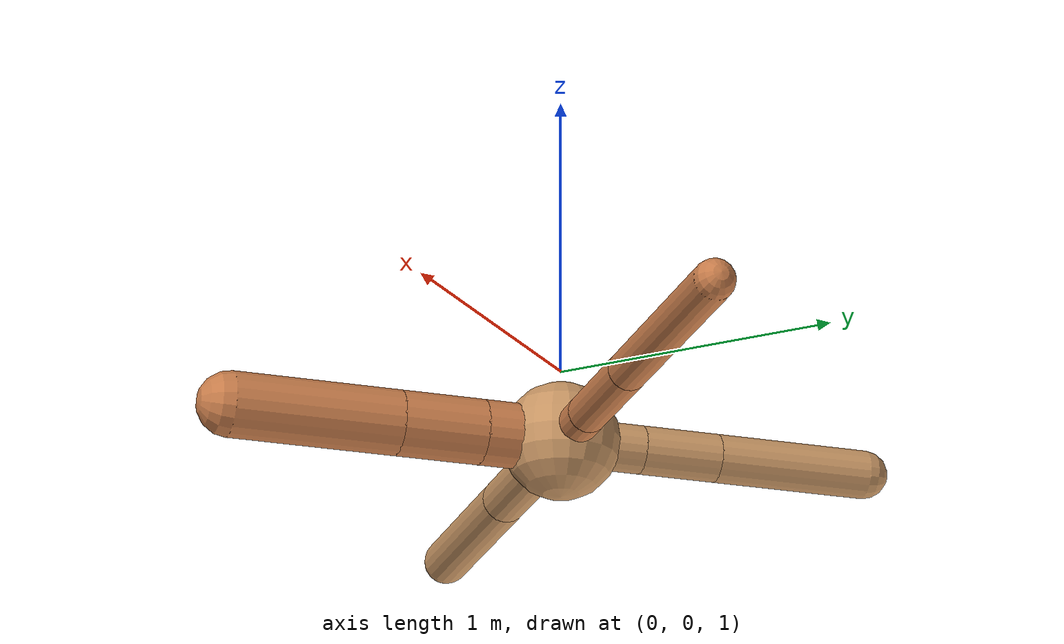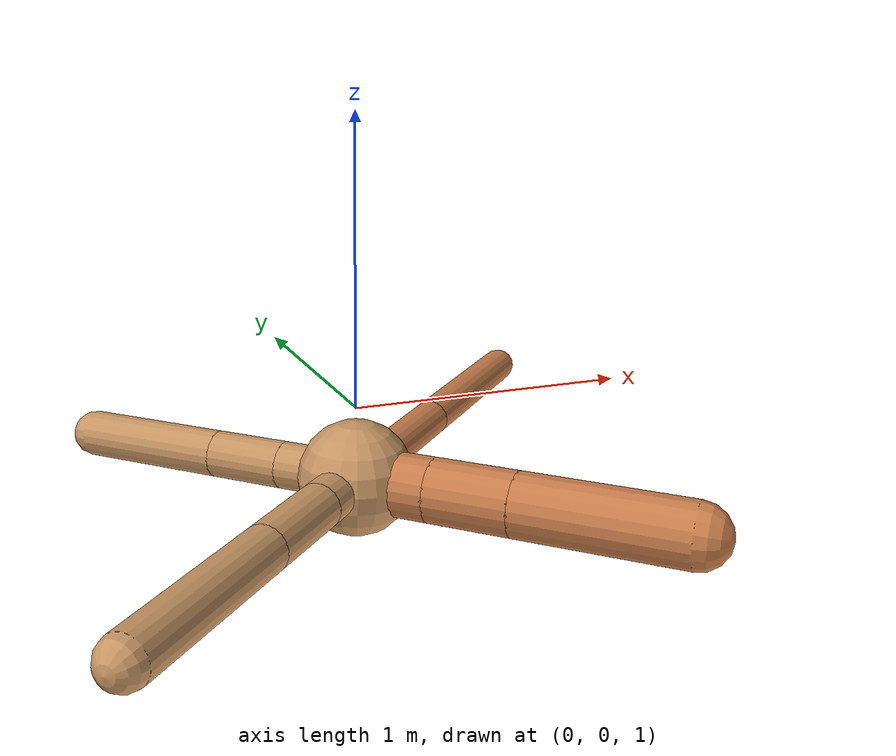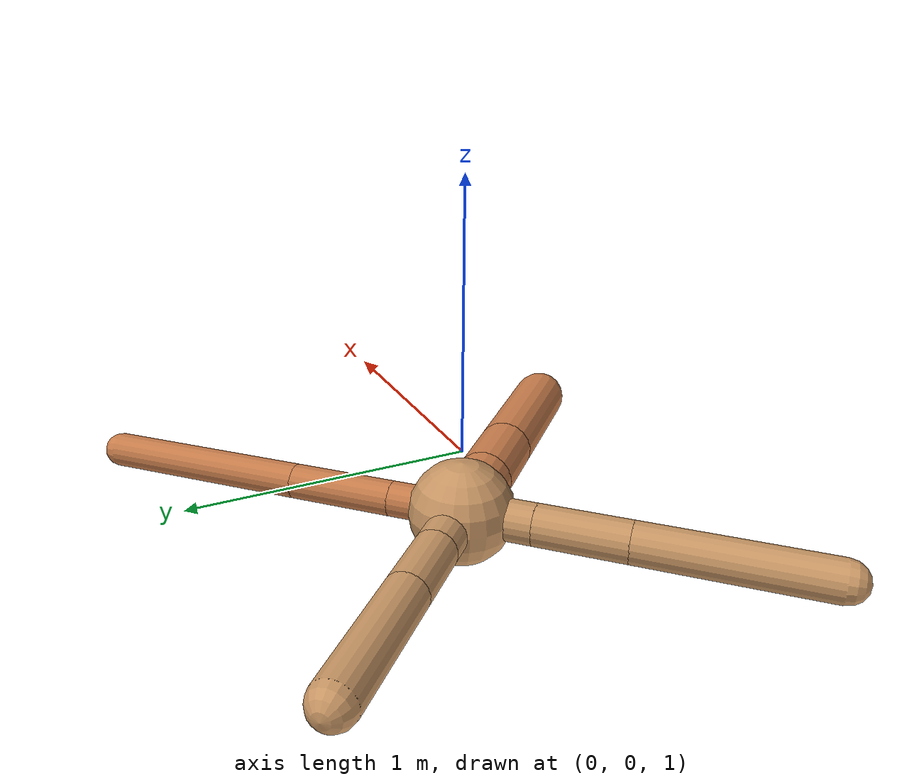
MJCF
<?xml version="1.0" ?>
<mujoco model="ant">

	<compiler angle="degree" coordinate="local" inertiafromgeom="true"/>

	<option integrator="RK4" timestep="0.01"/>

	<custom>

		<numeric data="0.0 0.0 0.55 1.0 0.0 0.0 0.0 0.0 1.0 0.0 -1.0 0.0 -1.0 0.0 1.0" name="init_qpos"/>

	</custom>

	<default>

		<joint armature="1" damping="1" limited="true"/>

		<geom conaffinity="0" condim="3" density="5.0" friction="1.5 0.1 0.1" margin="0.01" rgba="0.8 0.6 0.4 1"/>

	</default>

	<worldbody>

		<body name="torso" pos="0 0 0.75">

			<geom name="torso_geom" pos="0 0 0" size="0.20266611513152744" type="sphere"/>

			<!--joint armature="0" damping="0" limited="false" margin="0.01" name="root" pos="0 0 0" type="free"/-->

			<body name="front_left_leg" pos="0 0 0">

				<geom fromto="0 0 0 0.2 0.2 0" name="aux_1_geom" size="0.06879715263248617" type="capsule" rgba=".8 .5 .3 1"/>

				<body name="aux_1" pos="0.2 0.2 0">

					<joint axis="0 0 1" name="hip_1" pos="0.0 0.0 0.0" range="-40 40" type="hinge"/>

					<geom fromto="0 0 0 0.2922091846975011 0.2922091846975011 0" name="left_leg_geom" size="0.06879715263248617" type="capsule" rgba=".8 .5 .3 1"/>

					<body pos="0.2922091846975011 0.2922091846975011 0" name="front_left_foot">

						<joint axis="-1 1 0" name="ankle_1" pos="0.0 0.0 0.0" range="30 100" type="hinge"/>

						<geom fromto="0 0 0 0.5844183693950022 0.5844183693950022 0" name="left_ankle_geom" size="0.06879715263248617" type="capsule" rgba=".8 .5 .3 1"/>

					</body>

				</body>

			</body>

			<body name="front_right_leg" pos="0 0 0">

				<geom fromto="0 0 0 -0.2 0.2 0" name="aux_2_geom" size="0.08349819570172841" type="capsule"/>

				<body name="aux_2" pos="-0.2 0.2 0">

					<joint axis="0 0 1" name="hip_2" pos="0.0 0.0 0.0" range="-40 40" type="hinge"/>

					<geom fromto="0 0 0 -0.19178518780183168 0.19178518780183168 0" name="right_leg_geom" size="0.08349819570172841" type="capsule"/>

					<body pos="-0.19178518780183168 0.19178518780183168 0" name="front_right_foot">

						<joint axis="1 1 0" name="ankle_2" pos="0.0 0.0 0.0" range="-100 -30" type="hinge"/>

						<geom fromto="0 0 0 -0.38357037560366336 0.38357037560366336 0" name="right_ankle_geom" size="0.08349819570172841" type="capsule"/>

					</body>

				</body>

			</body>

			<body name="left_back_leg" pos="0 0 0">

				<geom fromto="0 0 0 -0.2 -0.2 0" name="aux_3_geom" size="0.08062578183291974" type="capsule"/>

				<body name="aux_3" pos="-0.2 -0.2 0">

					<joint axis="0 0 1" name="hip_3" pos="0.0 0.0 0.0" range="-40 40" type="hinge"/>

					<geom fromto="0 0 0 -0.2492784132470751 -0.2492784132470751 0" name="back_leg_geom" size="0.08062578183291974" type="capsule"/>

					<body pos="-0.2492784132470751 -0.2492784132470751 0" name="left_back_foot">

						<joint axis="-1 1 0" name="ankle_3" pos="0.0 0.0 0.0" range="-100 -30" type="hinge"/>

						<geom fromto="0 0 0 -0.4985568264941502 -0.4985568264941502 0" name="third_ankle_geom" size="0.08062578183291974" type="capsule"/>

					</body>

				</body>

			</body>

			<body name="right_back_leg" pos="0 0 0">

				<geom fromto="0 0 0 0.2 -0.2 0" name="aux_4_geom" size="0.11212739782341453" type="capsule" rgba=".8 .5 .3 1"/>

				<body name="aux_4" pos="0.2 -0.2 0">

					<joint axis="0 0 1" name="hip_4" pos="0.0 0.0 0.0" range="-40 40" type="hinge"/>

					<geom fromto="0 0 0 0.20607932704310264 -0.20607932704310264 0" name="rightback_leg_geom" size="0.11212739782341453" type="capsule" rgba=".8 .5 .3 1"/>

					<body pos="0.20607932704310264 -0.20607932704310264 0" name="right_back_foot">

						<joint axis="1 1 0" name="ankle_4" pos="0.0 0.0 0.0" range="30 100" type="hinge"/>

						<geom fromto="0 0 0 0.4121586540862053 -0.4121586540862053 0" name="fourth_ankle_geom" size="0.11212739782341453" type="capsule" rgba=".8 .5 .3 1"/>

					</body>

				</body>

			</body>

		</body>

	</worldbody>

	<actuator>

		<motor ctrllimited="true" ctrlrange="-1.0 1.0" joint="hip_4" gear="150"/>

		<motor ctrllimited="true" ctrlrange="-1.0 1.0" joint="ankle_4" gear="150"/>

		<motor ctrllimited="true" ctrlrange="-1.0 1.0" joint="hip_1" gear="150"/>

		<motor ctrllimited="true" ctrlrange="-1.0 1.0" joint="ankle_1" gear="150"/>

		<motor ctrllimited="true" ctrlrange="-1.0 1.0" joint="hip_2" gear="150"/>

		<motor ctrllimited="true" ctrlrange="-1.0 1.0" joint="ankle_2" gear="150"/>

		<motor ctrllimited="true" ctrlrange="-1.0 1.0" joint="hip_3" gear="150"/>

		<motor ctrllimited="true" ctrlrange="-1.0 1.0" joint="ankle_3" gear="150"/>

	</actuator>

</mujoco>
